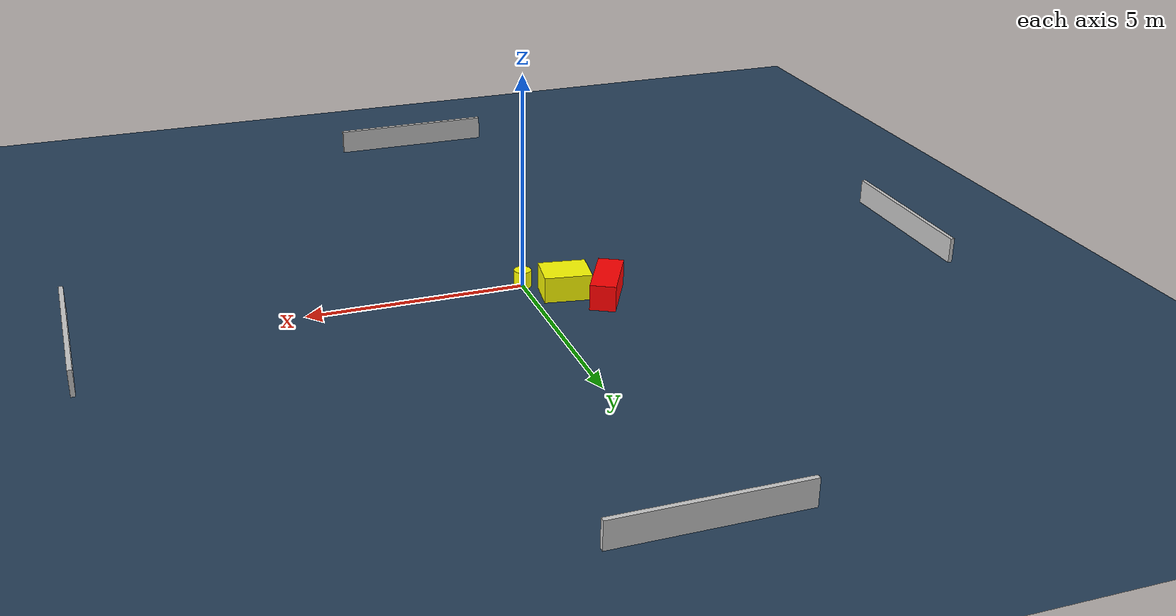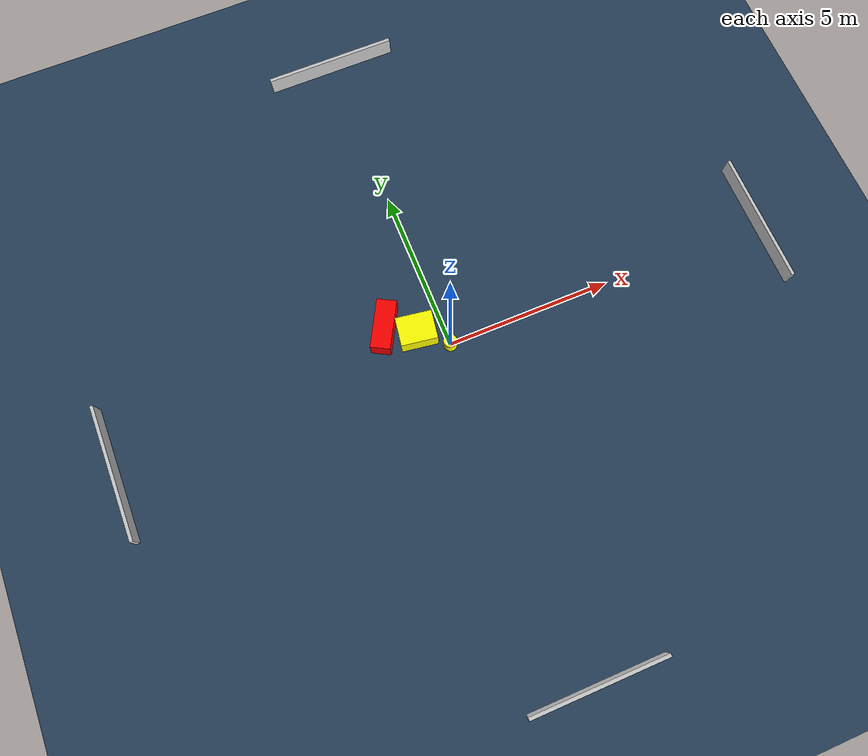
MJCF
<?xml version="1.0" ?>
<mujoco model="generated_environment">
  <option timestep="0.01" integrator="RK4" cone="elliptic"/>
  <default>
    <geom density="1"/>
  </default>
  <asset>
    <texture builtin="gradient" height="3072" name="skybox" rgb1="0.3 0.5 0.7" rgb2="0 0 0" type="skybox" width="512"/>
    <texture builtin="checker" height="300" name="groundplane" rgb1="0.2 0.3 0.4" rgb2="0.1 0.2 0.3" type="2d" width="300"/>
    <material name="groundplane" reflectance="0.2" texrepeat="5 5" texture="groundplane"/>
  </asset>
  <worldbody>
    <light dir="0 0 -1" directional="true" pos="0 0 1.5"/>
    <geom condim="3" friction="0.5 0.005 0.001" material="groundplane" name="floor" pos="0 0 0" size="0 0 0.05" type="plane"/>
    <body name="walls">
      <geom name="wall_1" condim="4" pos="-10.0 0.0 0.3" rgba="0.800000011920929 0.800000011920929 0.800000011920929 1.0" size="0.05 2.0 0.3" type="box"/>
      <geom name="wall_2" condim="4" pos="10.0 0.0 0.3" rgba="0.800000011920929 0.800000011920929 0.800000011920929 1.0" size="0.05 2.0 0.3" type="box"/>
      <geom name="wall_3" condim="4" pos="0.0 -10.0 0.3" rgba="0.800000011920929 0.800000011920929 0.800000011920929 1.0" size="2.0 0.05 0.3" type="box"/>
      <geom name="wall_4" condim="4" pos="0.0 10.0 0.3" rgba="0.800000011920929 0.800000011920929 0.800000011920929 1.0" size="2.0 0.05 0.3" type="box"/>
    </body>
    <body name="robot">
      <joint name="joint_x" type="slide" pos="0 0 0" axis="1 0 0"/>
      <joint name="joint_y" type="slide" pos="0 0 0" axis="0 1 0"/>
      <geom name="robot" type="cylinder" pos="0.0 0.0 0.2" size="0.2 0.2 0.0" mass="5.0" friction="1.0 0.005 0.0001" condim="4" rgba="1.0 1.0 0.0 1.0"/>
    </body>
    <body name="obstacle_1_movable">
      <geom name="obstacle_1_movable" condim="4" pos="-0.7761874506493007 0.6710134022654267 0.3" euler="0 0 171.3846683440973" friction="0.0 0.005 0.001" rgba="1.0 1.0 0.0 1.0" size="0.542608546668717 0.4302913173585597 0.3" type="box" mass="0.1"/>
      <joint type="free"/>
    </body>
    <body name="obstacle_2_static">
      <geom name="obstacle_2_static" condim="4" pos="-1.6052885274771618 1.1465254022254159 0.3" euler="0 0 61.32570387030739" friction="0.0 0.005 0.001" rgba="1.0 0.0 0.0 1.0" size="0.7345986892013836 0.2926084901370968 0.3" type="box"/>
    </body>
  </worldbody>
  <actuator>
    <motor name="actuator_x" joint="joint_x" gear="1" ctrlrange="-1 1"/>
    <motor name="actuator_y" joint="joint_y" gear="1" ctrlrange="-1 1"/>
  </actuator>
</mujoco>
